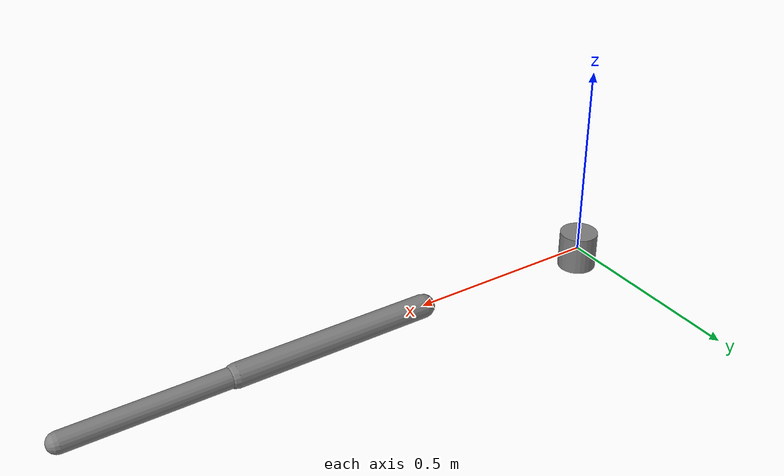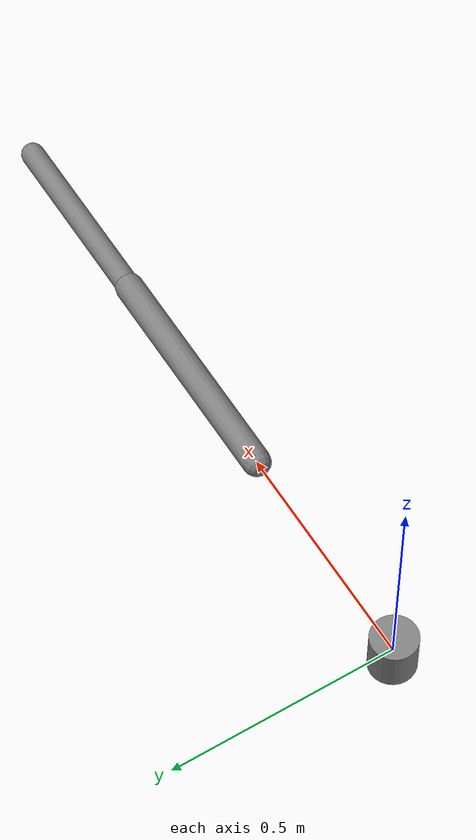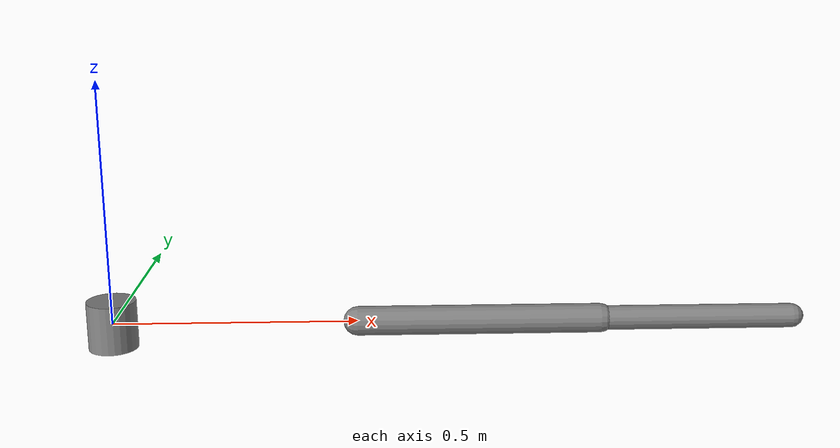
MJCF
<?xml version="1.0" ?>
<mujoco model="2link_arm">
  <option timestep="0.001" gravity="0 0 0" cone="pyramidal" iterations="100" tolerance="1e-10"/>

  <!-- Default properties for all elements -->
  <default>
    <!-- Capsule geometry with default density -->
    <geom type="capsule" density="1000" friction="0" solimp="0.9 0.95 0.001" solref="0.02 1"/>
    <!-- Hinge joint with no friction or damping -->
    <joint type="hinge" damping="0" frictionloss="0" armature="0" stiffness="0" limited="false"/>
    <!-- Motor actuator with control limits -->
    <motor ctrlrange="-10 10" ctrllimited="true"/>
  </default>

  <!-- World Body containing the robot -->
  <worldbody>
    <!-- Base link (fixed at origin) -->
    <body name="base" pos="0 0 0">
      <!-- Base geometry -->
      <geom type="cylinder" size="0.05 0.05" density="1000"/>

      <!-- Joint 1: Connects base to link 1 -->
      <!-- Axis 0 0 1 means rotation about z-axis (out of plane) -->
      <joint name="j1" type="hinge" axis="0 0 1" stiffness="0" damping="0"/>

      <!-- Link 1: First arm segment -->
      <body name="link1" pos="0.5 0 0">
        <!--
          Capsule geometry for link 1:
          - fromto: from (0,0,0) to (0.5,0,0) in link1's local frame
          - size: radius of capsule (0.03m)
          - mass: 1.0 kg
        -->
        <geom type="capsule" fromto="0 0 0 0.5 0 0" size="0.03" mass="1.0"/>

        <!-- Joint 2: Connects link 1 to link 2 -->
        <!-- Positioned at the end of link 1 (0.5, 0, 0) -->
        <joint name="j2" type="hinge" axis="0 0 1" pos="0.5 0 0" stiffness="0" damping="0"/>

        <!-- Link 2: Second arm segment -->
        <body name="link2" pos="0.5 0 0">
          <!--
            Capsule geometry for link 2:
            - fromto: from (0,0,0) to (0.4,0,0) in link2's local frame
            - size: radius of capsule (0.025m)
            - mass: 0.8 kg
          -->
          <geom type="capsule" fromto="0 0 0 0.4 0 0" size="0.025" mass="0.8"/>
        </body>
      </body>
    </body>
  </worldbody>

  <!-- Actuators for motor control -->
  <actuator>
    <!-- Motor for joint 1 -->
    <motor name="motor1" joint="j1" ctrlrange="-10 10" ctrllimited="true"/>
    <!-- Motor for joint 2 -->
    <motor name="motor2" joint="j2" ctrlrange="-10 10" ctrllimited="true"/>
  </actuator>
</mujoco>
